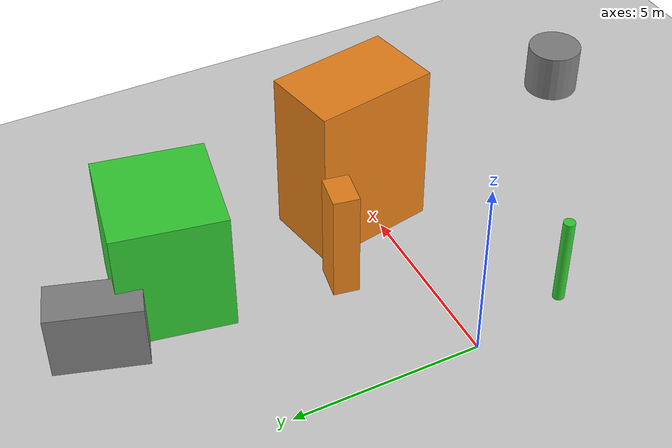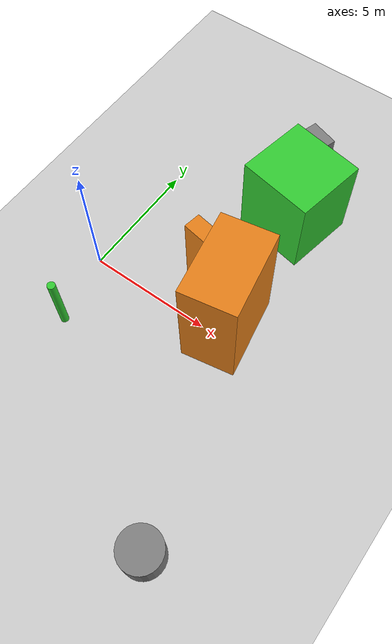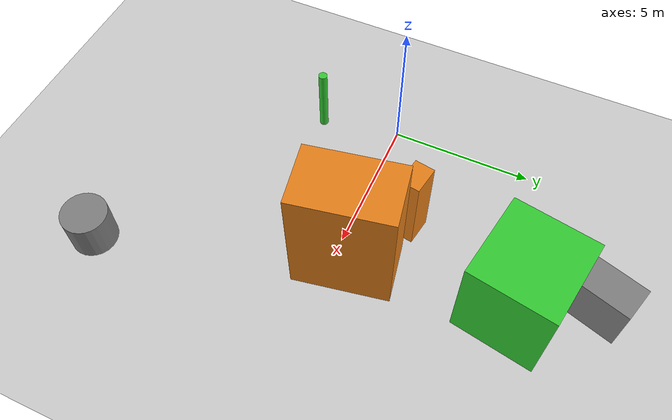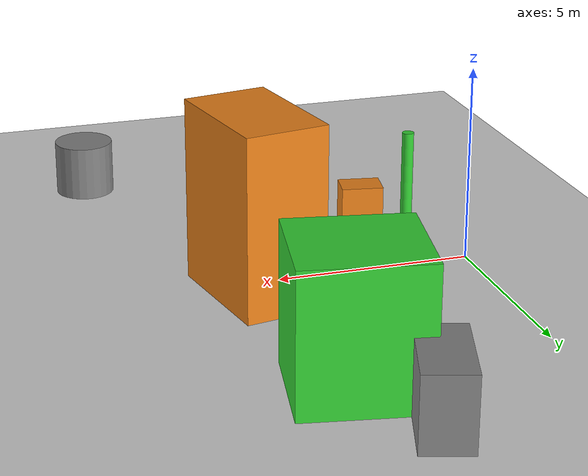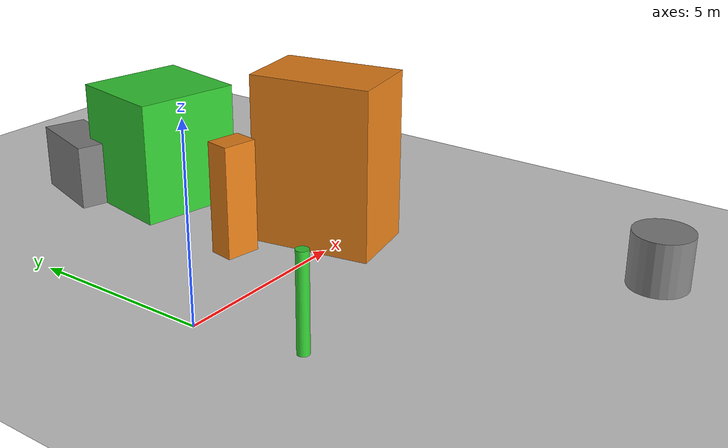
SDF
<?xml version='1.0'?>
<sdf version='1.6'>
  <world name='default'>
    <!-- Sun light -->
    <light name='sun' type='directional'>
      <cast_shadows>1</cast_shadows>
      <pose>0 0 10 0 0 0</pose>
      <diffuse>0.8 0.8 0.8 1</diffuse>
      <specular>0.2 0.2 0.2 1</specular>
      <attenuation>
        <range>1000</range>
        <constant>0.9</constant>
        <linear>0.01</linear>
        <quadratic>0.001</quadratic>
      </attenuation>
      <direction>-0.5 0.1 -0.9</direction>
    </light>

    <!-- Ground plane -->
    <model name='ground_plane'>
      <static>1</static>
      <link name='link'>
        <collision name='collision'>
          <geometry>
            <plane>
              <normal>0 0 1</normal>
              <size>100 100</size>
            </plane>
          </geometry>
          <surface>
            <contact>
              <collide_bitmask>65535</collide_bitmask>
              <ode/>
            </contact>
            <friction>
              <ode>
                <mu>100</mu>
                <mu2>50</mu2>
              </ode>
              <torsional><ode/></torsional>
            </friction>
            <bounce/>
          </surface>
          <max_contacts>10</max_contacts>
        </collision>
        <visual name='visual'>
          <cast_shadows>0</cast_shadows>
          <geometry>
            <plane>
              <normal>0 0 1</normal>
              <size>100 100</size>
            </plane>
          </geometry>
          <material>
            <script>
              <uri>file://media/materials/scripts/gazebo.material</uri>
              <n>Gazebo/Grey</n>
            </script>
          </material>
        </visual>
      </link>
    </model>

    <!-- Environment -->
    <magnetic_field>6e-06 2.3e-05 -4.2e-05</magnetic_field>
    <atmosphere type='adiabatic'/>
    <physics name='default_physics' default='0' type='ode'>
      <gravity>0 0 -9.8</gravity>
      <max_step_size>0.004</max_step_size>
      <real_time_factor>1</real_time_factor>
      <real_time_update_rate>250</real_time_update_rate>
    </physics>
    <scene>
      <ambient>0.4 0.4 0.4 1</ambient>
      <background>0.7 0.7 0.7 1</background>
      <shadows>1</shadows>
    </scene>
    <wind/>
    <spherical_coordinates>
      <surface_model>EARTH_WGS84</surface_model>
      <latitude_deg>0</latitude_deg>
      <longitude_deg>0</longitude_deg>
      <elevation>0</elevation>
      <heading_deg>0</heading_deg>
    </spherical_coordinates>

    <!-- ============ OBSTACLES (6) ============ -->
    <model name='obs_00'>
      <static>1</static>
      <link name='link'>
        <visual name='visual'>
          <geometry>
            <box>
              <size>1.2075 2.3783 1.8227</size>
            </box>
          </geometry>
          <material>
            <script>
              <n>Gazebo/Grey</n>
              <uri>file://media/materials/scripts/gazebo.material</uri>
            </script>
            <ambient>0.5 0.5 0.5 1</ambient>
          </material>
        </visual>
        <collision name='collision'>
          <geometry>
            <box>
              <size>1.2075 2.3783 1.8227</size>
            </box>
          </geometry>
          <max_contacts>10</max_contacts>
          <surface>
            <contact><ode/></contact>
            <bounce/>
            <friction>
              <ode><mu>1</mu><mu2>1</mu2></ode>
              <torsional><ode/></torsional>
            </friction>
          </surface>
        </collision>
      </link>
      <pose>4.0388 8.2559 0.9113 0 0 2.8365</pose>
    </model>

    <model name='obs_01'>
      <static>1</static>
      <link name='link'>
        <visual name='visual'>
          <geometry>
            <box>
              <size>2.8810 3.0092 3.4441</size>
            </box>
          </geometry>
          <material>
            <script>
              <n>Gazebo/Green</n>
              <uri>file://media/materials/scripts/gazebo.material</uri>
            </script>
            <ambient>0.2 0.8 0.2 1</ambient>
          </material>
        </visual>
        <collision name='collision'>
          <geometry>
            <box>
              <size>2.8810 3.0092 3.4441</size>
            </box>
          </geometry>
          <max_contacts>10</max_contacts>
          <surface>
            <contact><ode/></contact>
            <bounce/>
            <friction>
              <ode><mu>1</mu><mu2>1</mu2></ode>
              <torsional><ode/></torsional>
            </friction>
          </surface>
        </collision>
      </link>
      <pose>5.1470 6.0399 1.7221 0 0 1.3881</pose>
    </model>

    <model name='obs_02'>
      <static>1</static>
      <link name='link'>
        <visual name='visual'>
          <geometry>
            <box>
              <size>0.6947 0.9618 3.0771</size>
            </box>
          </geometry>
          <material>
            <script>
              <n>Gazebo/Orange</n>
              <uri>file://media/materials/scripts/gazebo.material</uri>
            </script>
            <ambient>0.9 0.5 0.1 1</ambient>
          </material>
        </visual>
        <collision name='collision'>
          <geometry>
            <box>
              <size>0.6947 0.9618 3.0771</size>
            </box>
          </geometry>
          <max_contacts>10</max_contacts>
          <surface>
            <contact><ode/></contact>
            <bounce/>
            <friction>
              <ode><mu>1</mu><mu2>1</mu2></ode>
              <torsional><ode/></torsional>
            </friction>
          </surface>
        </collision>
      </link>
      <pose>3.6068 1.9163 1.5386 0 0 1.3995</pose>
    </model>

    <model name='obs_03'>
      <static>1</static>
      <link name='link'>
        <visual name='visual'>
          <geometry>
            <box>
              <size>2.1183 3.3242 4.6164</size>
            </box>
          </geometry>
          <material>
            <script>
              <n>Gazebo/Orange</n>
              <uri>file://media/materials/scripts/gazebo.material</uri>
            </script>
            <ambient>0.9 0.5 0.1 1</ambient>
          </material>
        </visual>
        <collision name='collision'>
          <geometry>
            <box>
              <size>2.1183 3.3242 4.6164</size>
            </box>
          </geometry>
          <max_contacts>10</max_contacts>
          <surface>
            <contact><ode/></contact>
            <bounce/>
            <friction>
              <ode><mu>1</mu><mu2>1</mu2></ode>
              <torsional><ode/></torsional>
            </friction>
          </surface>
        </collision>
      </link>
      <pose>5.7474 0.5101 2.3082 0 0 0.1814</pose>
    </model>

    <model name='obs_04'>
      <static>1</static>
      <link name='link'>
        <visual name='visual'>
          <geometry>
            <cylinder>
              <radius>0.1556</radius>
              <length>2.5253</length>
            </cylinder>
          </geometry>
          <material>
            <script>
              <n>Gazebo/Green</n>
              <uri>file://media/materials/scripts/gazebo.material</uri>
            </script>
            <ambient>0.2 0.8 0.2 1</ambient>
          </material>
        </visual>
        <collision name='collision'>
          <geometry>
            <cylinder>
              <radius>0.1556</radius>
              <length>2.5253</length>
            </cylinder>
          </geometry>
          <max_contacts>10</max_contacts>
          <surface>
            <contact><ode/></contact>
            <bounce/>
            <friction>
              <ode><mu>1</mu><mu2>1</mu2></ode>
              <torsional><ode/></torsional>
            </friction>
          </surface>
        </collision>
      </link>
      <pose>0.5635 -2.7643 1.2627 0 0 0.7994</pose>
    </model>

    <model name='obs_05'>
      <static>1</static>
      <link name='link'>
        <visual name='visual'>
          <geometry>
            <cylinder>
              <radius>0.7874</radius>
              <length>1.4463</length>
            </cylinder>
          </geometry>
          <material>
            <script>
              <n>Gazebo/Grey</n>
              <uri>file://media/materials/scripts/gazebo.material</uri>
            </script>
            <ambient>0.5 0.5 0.5 1</ambient>
          </material>
        </visual>
        <collision name='collision'>
          <geometry>
            <cylinder>
              <radius>0.7874</radius>
              <length>1.4463</length>
            </cylinder>
          </geometry>
          <max_contacts>10</max_contacts>
          <surface>
            <contact><ode/></contact>
            <bounce/>
            <friction>
              <ode><mu>1</mu><mu2>1</mu2></ode>
              <torsional><ode/></torsional>
            </friction>
          </surface>
        </collision>
      </link>
      <pose>8.3449 -7.7558 0.7232 0 0 0.1423</pose>
    </model>

    <!-- GUI camera -->
    <gui fullscreen='0'>
      <camera name='user_camera'>
        <pose>-15 0 18 0 0.85 0.15</pose>
        <view_controller>orbit</view_controller>
        <projection_type>perspective</projection_type>
      </camera>
    </gui>
  </world>
</sdf>
